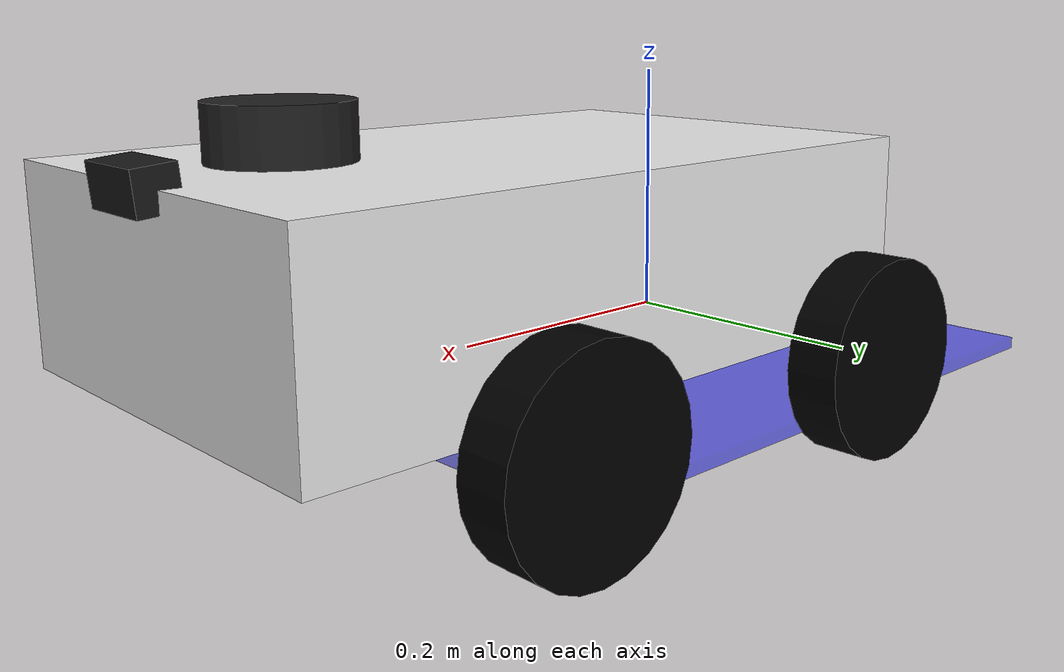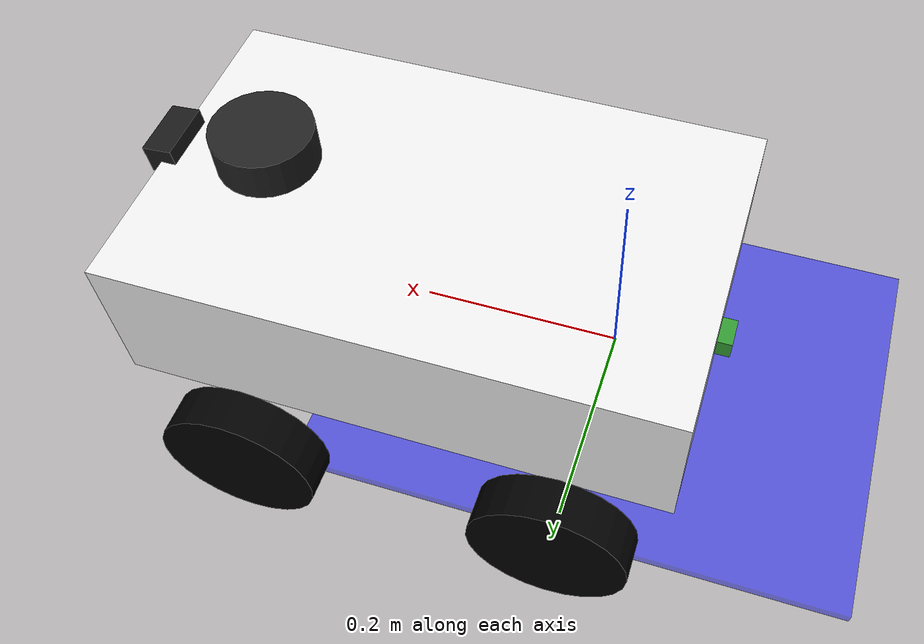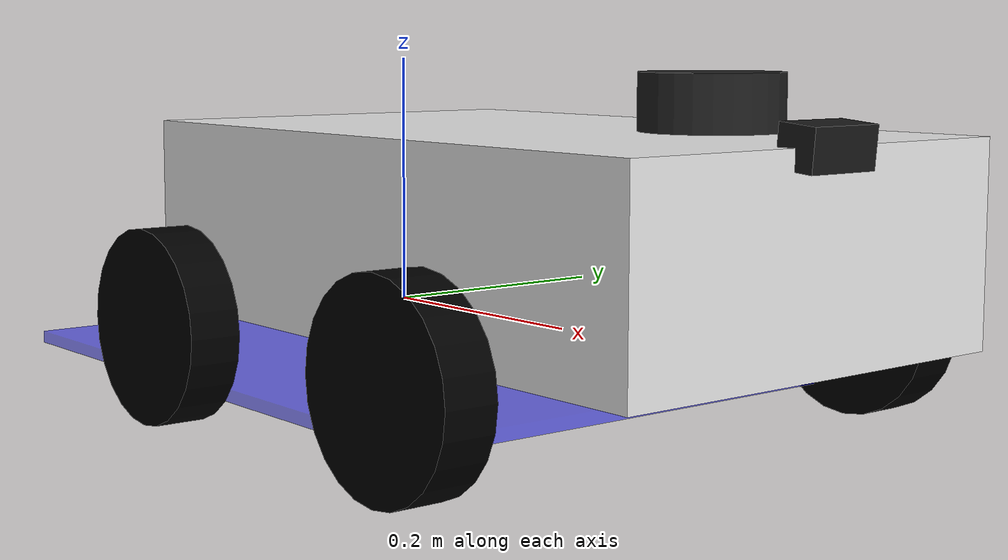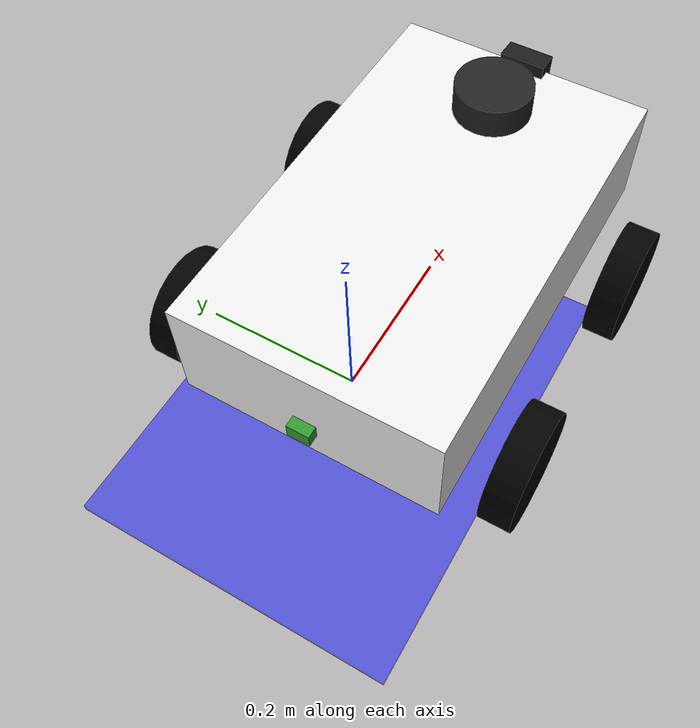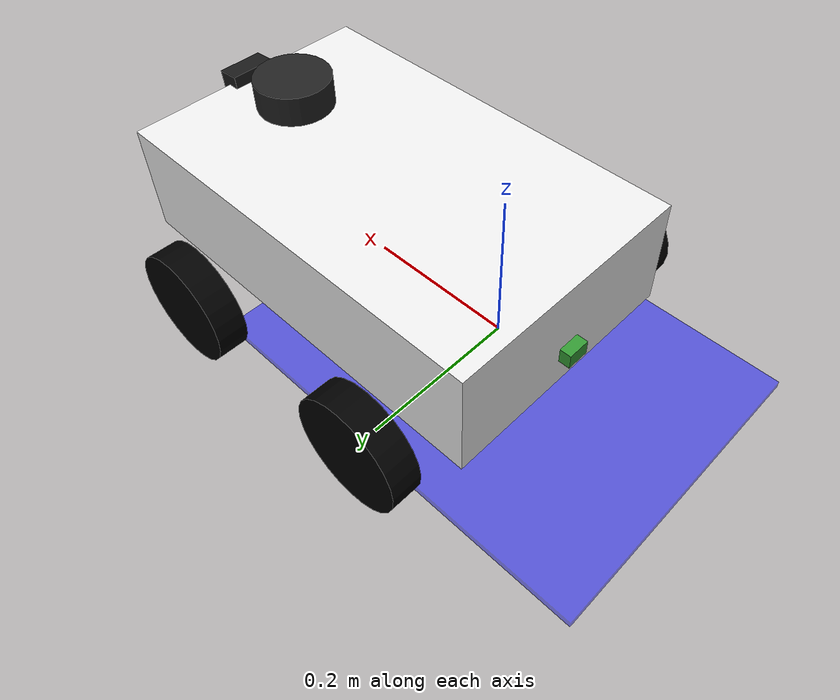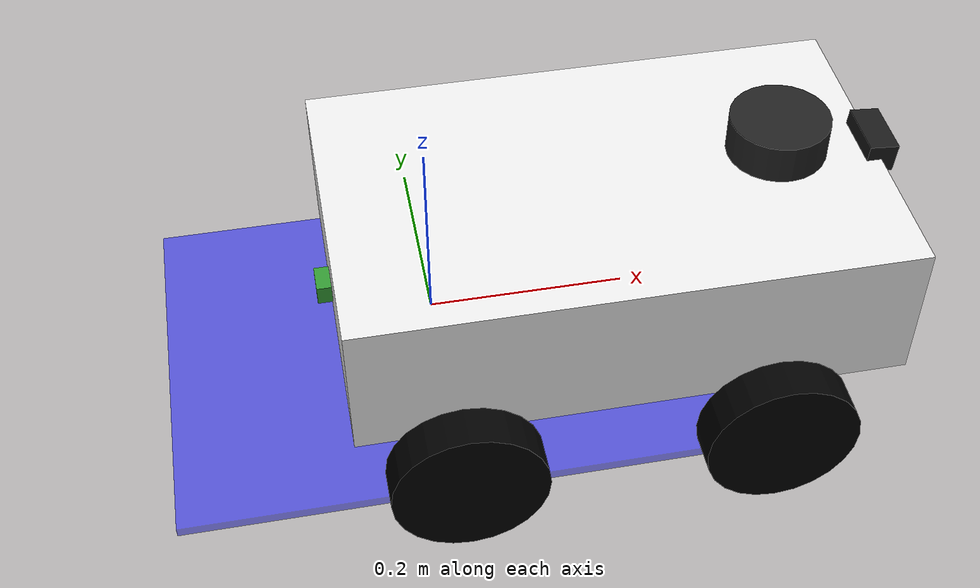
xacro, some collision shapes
<?xml version="1.0"?>
<robot name="rosnav_bot" xmlns:xacro="http://www.ros.org/wiki/xacro">

    <xacro:include filename="robot_core_mir100.xacro" />

    <xacro:include filename="gazebo_control.xacro" />

    <xacro:arg name="lidar_type" default="2d"/>
    <xacro:if value="${'$(arg lidar_type)' == '3d'}">
        <xacro:include filename="lidar3d.xacro" />
    </xacro:if>
    <xacro:unless value="${'$(arg lidar_type)' == '3d'}">
        <xacro:include filename="lidar.xacro" />
    </xacro:unless>

    <xacro:include filename="imu.xacro" />

    <xacro:arg name="enable_camera" default="true"/>
    <xacro:arg name="enable_rgbd" default="false"/>
    <xacro:if value="${'$(arg enable_rgbd)' == 'true'}">
        <xacro:include filename="rgbd_camera.xacro" />
    </xacro:if>
    <xacro:unless value="${'$(arg enable_rgbd)' == 'true'}">
        <xacro:if value="${'$(arg enable_camera)' == 'true'}">
            <xacro:include filename="camera.xacro" />
        </xacro:if>
    </xacro:unless>

</robot>

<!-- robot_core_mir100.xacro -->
<robot name="car_robot" xmlns:xacro="http://www.ros.org/wiki/xacro" xmlns:gazebo="http://gazebo.apache.org/xmlns/gazebo">

  <xacro:include filename="inertial_macros.xacro" />

  <!-- Base Link -->
  <link name="base_link"/>
  <link name="base_footprint">
    <collision>
      <geometry>
        <box size="0.55 0.4 0.01"/>
      </geometry>
    </collision>
    <visual>
      <geometry>
        <box size="0.55 0.4 0.01"/>
      </geometry>
      <material name="footprint_material">
        <color rgba="0.0 0.0 1.0 0.5"/>
      </material>
    </visual>
  </link>

  <joint name="base_footprint_joint" type="fixed">
    <parent link="base_link"/>
    <child link="base_footprint"/>
    <origin xyz="0 0 -0.05"/>
  </joint>

  <joint name="chassis_joint" type="fixed">
    <parent link="base_link"/>
    <child link="chassis"/>
    <origin xyz="-0.1 0 0"/>
  </joint>

  <link name="chassis">
    <visual>
      <origin xyz="0.275 0 -0.047" rpy="0 0 0"/>
      <geometry>
        <mesh filename="package://rosnav_bot/meshes/mir100/visual/mir_100_base.stl" scale="0.61 0.61 0.61"/>
      </geometry>
      <material name="chassis_material">
        <color rgba="0.92 0.92 0.92 1.0"/>
      </material>
    </visual>
    <collision>
      <origin xyz="0.275 0 0.075"/>
      <geometry>
        <box size="0.55 0.34 0.15"/>
      </geometry>
    </collision>
      <xacro:inertial_box mass="0.5" x="0.55" y="0.4" z="0.15">
            <origin xyz="0.275 0 0.075" rpy="0 0 0"/>
         </xacro:inertial_box>
  </link>

  <!-- Rear Wheels -->
  <joint name="left_wheel_joint" type="continuous">
    <parent link="base_link"/>
    <child link="left_wheel"/>
    <origin xyz="0 0.225 0" rpy="-1.57 0 0"/>
    <axis xyz="0 0 1"/>
  </joint>

  <link name="left_wheel">
    <visual>
      <geometry>
        <cylinder radius="0.075" length="0.04"/>
      </geometry>
      <material name="wheel_material">
        <color rgba="0 0 0 1.0"/>
      </material>
    </visual>
    <collision>
      <geometry>
        <cylinder radius="0.075" length="0.04"/>
      </geometry>
    </collision>
        <xacro:inertial_cylinder mass="0.1" length="0.04" radius="0.075">
            <origin xyz="0 0 0" rpy="0 0 0"/>
         </xacro:inertial_cylinder>
  </link>

  <joint name="right_wheel_joint" type="continuous">
    <parent link="base_link"/>
    <child link="right_wheel"/>
    <origin xyz="0 -0.225 0" rpy="1.57 0 0"/>
    <axis xyz="0 0 -1"/>
  </joint>

  <link name="right_wheel">
    <visual>
      <geometry>
        <cylinder radius="0.075" length="0.04"/>
      </geometry>
      <material name="wheel_material">
        <color rgba="0 0 0 1.0"/>
      </material>
    </visual>
    <collision>
      <geometry>
        <cylinder radius="0.075" length="0.04"/>
      </geometry>
    </collision>
        <xacro:inertial_cylinder mass="0.1" length="0.04" radius="0.075">
            <origin xyz="0 0 0" rpy="0 0 0"/>
         </xacro:inertial_cylinder>
  </link>

  <!-- Front Wheels -->
  <joint name="left_front_wheel_joint" type="fixed">
    <parent link="base_link"/>
    <child link="left_front_wheel"/>
    <origin xyz="0.3 0.225 0" rpy="-1.57 0 0"/>
    <axis xyz="0 0 1"/>
  </joint>

  <link name="left_front_wheel">
    <visual>
      <geometry>
        <cylinder radius="0.075" length="0.04"/>
      </geometry>
      <material name="wheel_material">
        <color rgba="0 0 0 1.0"/>
      </material>
    </visual>
    <collision>
      <geometry>
        <cylinder radius="0.075" length="0.04"/>
      </geometry>
    </collision>
        <xacro:inertial_cylinder mass="0.1" length="0.04" radius="0.075">
            <origin xyz="0 0 0" rpy="0 0 0"/>
         </xacro:inertial_cylinder>
  </link>

  <joint name="right_front_wheel_joint" type="fixed">
    <parent link="base_link"/>
    <child link="right_front_wheel"/>
    <origin xyz="0.3 -0.225 0" rpy="1.57 0 0"/>
    <axis xyz="0 0 -1"/>
  </joint>

  <link name="right_front_wheel">
    <visual>
      <geometry>
        <cylinder radius="0.075" length="0.04"/>
      </geometry>
      <material name="wheel_material">
        <color rgba="0 0 0 1.0"/>
      </material>
    </visual>
    <collision>
      <geometry>
        <cylinder radius="0.075" length="0.04"/>
      </geometry>
    </collision>
        <xacro:inertial_cylinder mass="0.1" length="0.04" radius="0.075">
            <origin xyz="0 0 0" rpy="0 0 0"/>
         </xacro:inertial_cylinder>
  </link>

  <!-- Gazebo Parameters -->
  <gazebo reference="chassis">
    <mu1>1.0</mu1>
    <mu2>1.0</mu2>
  </gazebo>

  <gazebo reference="left_wheel">
    <mu1>1.0</mu1>
    <mu2>1.0</mu2>
  </gazebo>

  <gazebo reference="right_wheel">
    <mu1>1.0</mu1>
    <mu2>1.0</mu2>
  </gazebo>

  <gazebo reference="left_front_wheel">
       <mu1>0.000001</mu1>
         <mu2>0.000001</mu2>
  </gazebo>

  <gazebo reference="right_front_wheel">
     <mu1>0.000001</mu1>
         <mu2>0.000001</mu2>
  </gazebo>

</robot>

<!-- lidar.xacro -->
<robot xmlns:xacro="http://www.ros.org/wiki/xacro" >
   <xacro:arg name="namespace" default=""/>
   <xacro:property name="ns" value="$(arg namespace)"/>
   <joint name="laser_joint" type="fixed">
     <parent link="chassis"/>
     <child link="laser_frame"/>
     <origin xyz="0.45 0 0.175" rpy="0 0 0"/>
   </joint>
   <link name="laser_frame">
      <visual>
         <origin xyz="0 0 0"/>
         <geometry>
            <cylinder length="0.04" radius="0.05"/>
         </geometry>
         <material name="laser_material">
            <color rgba="0.13 0.13 0.13 1.0"/>
         </material>
      </visual>
      <collision>
         <origin xyz="0 0 0"/>
         <geometry>
            <cylinder length="0.04" radius="0.05"/>
         </geometry>
      </collision>
      <xacro:inertial_cylinder mass="0.1" length="0.04" radius="0.05">
         <origin xyz="0 0 0" rpy="0 0 0"/>
      </xacro:inertial_cylinder>
   </link>

   <!-- 2D Lidar New Gazebo Sensor Plugin  -->
   <gazebo reference="laser_frame">
      <sensor name="laser" type="gpu_lidar">
         <pose> 0 0 0 0 0 0 </pose>
         <always_on>true</always_on>
         <visualize>true</visualize>
         <update_rate>10</update_rate>
         <topic>${ns + '/scan' if ns else 'scan'}</topic>
         <gz_frame_id>${ns + '/laser_frame' if ns else 'laser_frame'}</gz_frame_id>
         <lidar>
            <scan>
               <horizontal>
               <samples>360</samples>
               <min_angle>-3.14</min_angle>
               <max_angle>3.14</max_angle>
               </horizontal>
            </scan>
            <range>
               <min>0.3</min>
               <max>12</max>
            </range>
         </lidar>
      </sensor>
   </gazebo>
</robot>

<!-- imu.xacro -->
<robot xmlns:xacro="http://www.ros.org/wiki/xacro">
  <!-- Body-frame IMU for Cartographer / multi-sensor SLAM. Bridged as /imu. -->
  <xacro:arg name="namespace" default=""/>
  <xacro:property name="ns" value="$(arg namespace)"/>

  <joint name="imu_joint" type="fixed">
    <parent link="chassis"/>
    <child link="imu_link"/>
    <origin xyz="0 0 0.05" rpy="0 0 0"/>
  </joint>
  <link name="imu_link">
    <visual>
      <origin xyz="0 0 0"/>
      <geometry>
        <box size="0.03 0.03 0.02"/>
      </geometry>
      <material name="imu_material">
        <color rgba="0.2 0.6 0.2 1.0"/>
      </material>
    </visual>
    <xacro:inertial_box mass="0.01" x="0.03" y="0.03" z="0.02">
      <origin xyz="0 0 0" rpy="0 0 0"/>
    </xacro:inertial_box>
  </link>

  <gazebo reference="imu_link">
    <sensor name="imu_sensor" type="imu">
      <always_on>true</always_on>
      <update_rate>100</update_rate>
      <topic>${ns + '/imu' if ns else 'imu'}</topic>
      <gz_frame_id>${ns + '/imu_link' if ns else 'imu_link'}</gz_frame_id>
      <imu>
        <angular_velocity>
          <x><noise type="gaussian"><mean>0.0</mean><stddev>0.0002</stddev></noise></x>
          <y><noise type="gaussian"><mean>0.0</mean><stddev>0.0002</stddev></noise></y>
          <z><noise type="gaussian"><mean>0.0</mean><stddev>0.0002</stddev></noise></z>
        </angular_velocity>
        <linear_acceleration>
          <x><noise type="gaussian"><mean>0.0</mean><stddev>0.017</stddev></noise></x>
          <y><noise type="gaussian"><mean>0.0</mean><stddev>0.017</stddev></noise></y>
          <z><noise type="gaussian"><mean>0.0</mean><stddev>0.017</stddev></noise></z>
        </linear_acceleration>
      </imu>
    </sensor>
  </gazebo>
</robot>

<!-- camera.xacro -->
<robot xmlns:xacro="http://www.ros.org/wiki/xacro">
  <xacro:arg name="namespace" default=""/>
  <xacro:property name="ns" value="$(arg namespace)"/>

  <joint name="camera_joint" type="fixed">
    <parent link="base_link"/>
    <child link="camera_link"/>
    <origin xyz="0.45 0.0 0.15" rpy="0 0.0873 0"/>
  </joint>

  <link name="camera_link">
    <visual>
      <geometry><box size="0.03 0.06 0.03"/></geometry>
      <material name="camera_material">
        <color rgba="0.1 0.1 0.1 1.0"/>
      </material>
    </visual>
    <collision>
      <geometry><box size="0.03 0.06 0.03"/></geometry>
    </collision>
    <xacro:inertial_box mass="0.01" x="0.03" y="0.06" z="0.03">
      <origin xyz="0 0 0" rpy="0 0 0"/>
    </xacro:inertial_box>
  </link>

  <!-- Optical frame: Z forward, X right, Y down (ROS convention) -->
  <joint name="camera_optical_joint" type="fixed">
    <parent link="camera_link"/>
    <child link="camera_optical_frame"/>
    <origin xyz="0 0 0" rpy="-1.5708 0 -1.5708"/>
  </joint>
  <link name="camera_optical_frame"/>

  <gazebo reference="camera_link">
    <sensor name="camera" type="camera">
      <always_on>true</always_on>
      <update_rate>15</update_rate>
      <topic>${ns + '/camera/image_raw' if ns else 'camera/image_raw'}</topic>
      <gz_frame_id>${ns + '/camera_optical_frame' if ns else 'camera_optical_frame'}</gz_frame_id>
      <camera>
        <horizontal_fov>1.5708</horizontal_fov>
        <image>
          <width>$(optenv ROSNAV_CAM_W 640)</width>
          <height>$(optenv ROSNAV_CAM_H 480)</height>
          <format>R8G8B8</format>
        </image>
        <clip>
          <near>0.05</near>
          <far>15.0</far>
        </clip>
        <noise>
          <type>gaussian</type>
          <mean>0.0</mean>
          <stddev>0.007</stddev>
        </noise>
      </camera>
    </sensor>
  </gazebo>

</robot>
